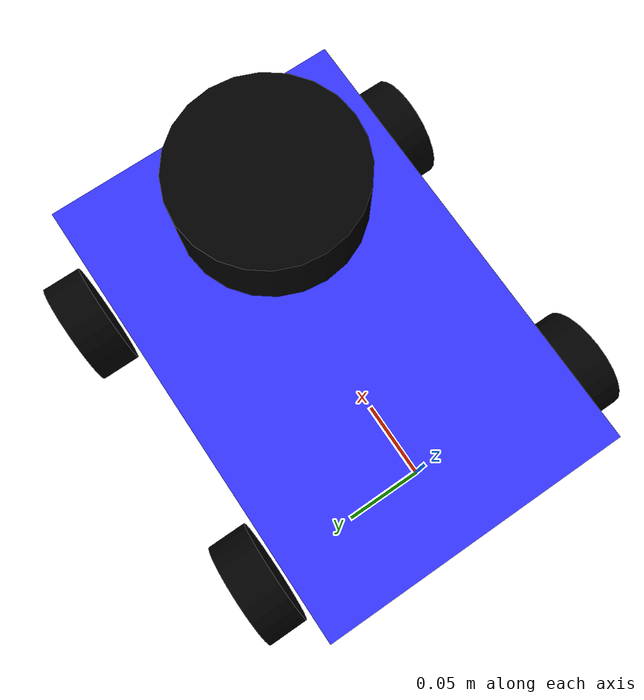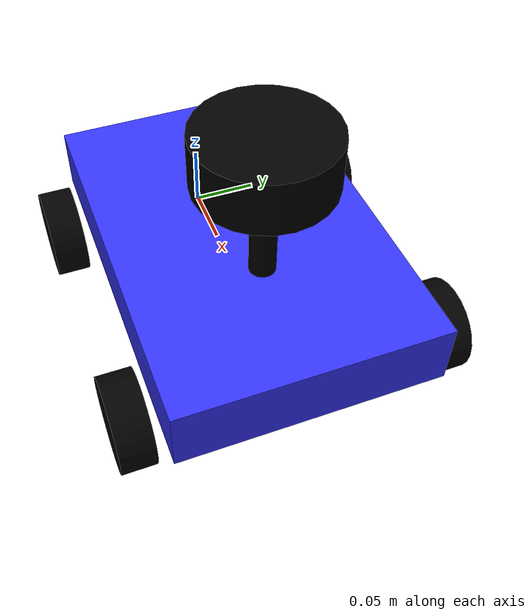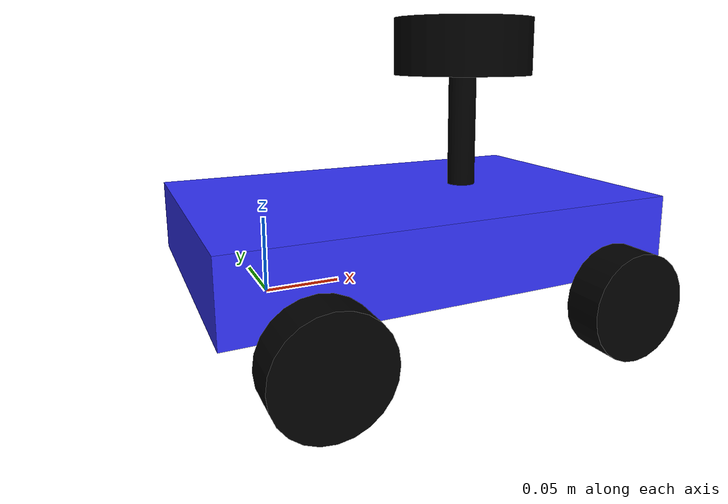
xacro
<?xml version="1.0"?>
<robot xmlns:xacro="http://www.ros.org/wiki/xacro"  name="robot">

    <xacro:arg name="use_ros2_control" default="true"/>
    <xacro:arg name="sim_mode" default="false"/>

    <xacro:include filename="robot_core.xacro" />

    <xacro:if value="$(arg use_ros2_control)">
        <xacro:include filename="ros2_control.xacro" />
    </xacro:if>
    <xacro:unless value="$(arg use_ros2_control)">
        <xacro:include filename="gazebo_control.xacro" />
    </xacro:unless>
    <xacro:include filename="lidar.xacro" />
</robot>

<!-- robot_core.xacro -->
<robot xmlns:xacro="http://www.ros.org/wiki/xacro" >

    <xacro:include filename="inertial_macros.xacro"/>

    <xacro:property name="chassis_length" value="0.3"/>
    <xacro:property name="chassis_width" value="0.2"/>
    <xacro:property name="chassis_height" value="0.050"/>
    <xacro:property name="chassis_mass" value="1.0"/>
    <xacro:property name="wheel_radius" value="0.035"/>
    <xacro:property name="wheel_thickness" value="0.026"/>
    <xacro:property name="wheel_mass" value="0.05"/>
    <xacro:property name="wheel_offset_x" value="0.05"/>
    <xacro:property name="wheel_offset_y" value="-0.1200"/>
    <xacro:property name="wheel_offset_z" value="-0.01"/>

    <material name="white">
        <color rgba="1 1 1 1" />
    </material>

    <material name="orange">
        <color rgba="1 0.3 0.1 1"/>
    </material>

    <material name="blue">
        <color rgba="0.2 0.2 1 1"/>
    </material>

    <material name="black">
        <color rgba="0 0 0 1"/>
    </material>

    <material name="red">
        <color rgba="1 0 0 1"/>
    </material>

    <!-- BASE LINK -->

    <link name="base_link">

    </link>

    <!-- BASE_FOOTPRINT LINK -->

    <joint name="base_footprint_joint" type="fixed">
        <parent link="base_link"/>
        <child link="base_footprint"/>
        <origin xyz="0 0 0" rpy="0 0 0"/>
    </joint>

    <link name="base_footprint">
    </link>

    <!-- CHASSIS LINK -->

    <joint name="chassis_joint" type="fixed">
        <parent link="base_link"/>
        <child link="chassis"/>
        <origin xyz="${-wheel_offset_x} 0 ${-wheel_offset_z}"/>
    </joint>

    <link name="chassis">
        <visual>
            <origin xyz="${chassis_length/2} 0 ${chassis_height/2}"/>
            <geometry>
                <box size="${chassis_length} ${chassis_width} ${chassis_height}"/>
            </geometry>
            <material name="blue"/>
        </visual>
        <collision>
            <origin xyz="${chassis_length/2} 0 ${chassis_height/2}"/>
            <geometry>
                <box size="${chassis_length} ${chassis_width} ${chassis_height}"/>
            </geometry>
        </collision>
        <xacro:inertial_box mass="0.5" x="${chassis_length}" y="${chassis_width}" z="${chassis_height}">
            <origin xyz="${chassis_length/2} 0 ${chassis_height/2}" rpy="0 0 0"/>
        </xacro:inertial_box>
    </link>

    <gazebo reference="chassis">
        <material>Gazebo/Blue</material>
    </gazebo>

    <!-- LEFT WHEEL LINK -->

    <joint name="left_wheel_joint" type="continuous">
        <parent link="base_link"/>
        <child link="left_wheel"/>
        <origin xyz="0 ${wheel_offset_y} 0" rpy="-${pi/2} 0 0" />
        <axis xyz="0 0 1"/>
    </joint>

    <link name="left_wheel">
        <visual>
            <geometry>
                <cylinder radius="${wheel_radius}" length="${wheel_thickness}"/>
            </geometry>
            <material name="black"/>
        </visual>
        <collision>
            <geometry>
                <sphere radius="${wheel_radius}"/>
            </geometry>
        </collision>
        <xacro:inertial_cylinder mass="${wheel_mass}" length="${wheel_thickness}" radius="${wheel_radius}">
            <origin xyz="0 0 0" rpy="0 0 0"/>
        </xacro:inertial_cylinder>
    </link>

    <gazebo reference="left_wheel">
        <material>Gazebo/Black</material>
    </gazebo>

    <!-- LEFT  FRONT WHEEL LINK -->

    <joint name="left_front_wheel_joint" type="continuous">
        <parent link="base_link"/>
        <child link="left_front_wheel"/>
        <origin xyz="0.2 ${wheel_offset_y} 0" rpy="-${pi/2} 0 0" />
        <axis xyz="0 0 1"/>
        <mimic joint="left_wheel_joint" multiplier="1"/>
    </joint>

    <link name="left_front_wheel">
        <visual>
            <geometry>
                <cylinder radius="${wheel_radius}" length="${wheel_thickness}"/>
            </geometry>
            <material name="black"/>
        </visual>
        <collision>
            <geometry>
                <sphere radius="${wheel_radius}"/>
            </geometry>
        </collision>
        <xacro:inertial_cylinder mass="${wheel_mass}" length="${wheel_thickness}" radius="${wheel_radius}">
            <origin xyz="0 0 0" rpy="0 0 0"/>
        </xacro:inertial_cylinder>
    </link>

    <gazebo reference="left_wheel">
        <material>Gazebo/Black</material>
    </gazebo>

    <!-- RIGHT WHEEL LINK -->

    <joint name="right_wheel_joint" type="continuous">
        <parent link="base_link"/>
        <child link="right_wheel"/>
        <origin xyz="0 ${-wheel_offset_y} 0" rpy="${pi/2} 0 0" />
        <axis xyz="0 0 -1"/>
    </joint>

    <link name="right_wheel">
        <visual>
            <geometry>
                <cylinder radius="${wheel_radius}" length="${wheel_thickness}"/>
            </geometry>
            <material name="black"/>
        </visual>
        <collision>
            <geometry>
                <sphere radius="${wheel_radius}"/>
            </geometry>
        </collision>
        <xacro:inertial_cylinder mass="${wheel_mass}" length="${wheel_thickness}" radius="${wheel_radius}">
            <origin xyz="0 0 0" rpy="0 0 0"/>
        </xacro:inertial_cylinder>
    </link>

    <gazebo reference="right_wheel">
        <material>Gazebo/Black</material>
    </gazebo>

    <!-- RIGHT FRONT WHEEL LINK -->

    <joint name="right_front_wheel_joint" type="continuous">
        <parent link="base_link"/>
        <child link="right_front_wheel"/>
        <origin xyz="0.2 ${-wheel_offset_y} 0" rpy="${pi/2} 0 0" />
        <axis xyz="0 0 -1"/>
        <mimic joint="right_wheel_joint" multiplier="1"/>
    </joint>

    <link name="right_front_wheel">
        <visual>
            <geometry>
                <cylinder radius="${wheel_radius}" length="${wheel_thickness}"/>
            </geometry>
            <material name="black"/>
        </visual>
        <collision>
            <geometry>
                <sphere radius="${wheel_radius}"/>
            </geometry>
        </collision>
        <xacro:inertial_cylinder mass="${wheel_mass}" length="${wheel_thickness}" radius="${wheel_radius}">
            <origin xyz="0 0 0" rpy="0 0 0"/>
        </xacro:inertial_cylinder>
    </link>

    <gazebo reference="right_wheel">
        <material>Gazebo/Black</material>
    </gazebo>

</robot>

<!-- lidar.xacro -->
<robot xmlns:xacro="http://www.ros.org/wiki/xacro" >

    <joint name="laser_joint" type="fixed">
        <parent link="chassis"/>
        <child link="laser"/>
        <origin xyz="0.20 0 0.150" rpy="0 0 0"/>
    </joint>

    <link name="laser">
        <visual>
            <geometry>
                <cylinder radius="0.05" length="0.04"/>
            </geometry>
            <material name="black"/>
        </visual>
        <visual>
            <origin xyz="0 0 -0.05"/>
            <geometry>
                <cylinder radius="0.01" length="0.1"/>
            </geometry>
            <material name="black"/>
        </visual>
        <collision>
            <geometry>
                <cylinder radius="0.05" length="0.04"/>
            </geometry>
        </collision>
        <xacro:inertial_cylinder mass="0.1" length="0.04" radius="0.05">
            <origin xyz="0 0 0" rpy="0 0 0"/>
        </xacro:inertial_cylinder>
    </link>

    <gazebo reference="laser">
        <material>Gazebo/Black</material>

        <sensor name="laser" type="ray">
            <pose> 0 0 0 0 0 0 </pose>
            <visualize>false</visualize>
            <update_rate>10</update_rate>
            <ray>
                <scan>
                    <horizontal>
                        <samples>360</samples>
                        <min_angle>-3.14</min_angle>
                        <max_angle>3.14</max_angle>
                    </horizontal>
                </scan>
                <range>
                    <min>0.3</min>
                    <max>12</max>
                </range>
            </ray>
            <plugin name="laser_controller" filename="libgazebo_ros_ray_sensor.so">
                <ros>
                    <argument>~/out:=scan</argument>
                </ros>
                <output_type>sensor_msgs/LaserScan</output_type>
                <frame_name>laser</frame_name>
            </plugin>
        </sensor>
    </gazebo>

</robot>
